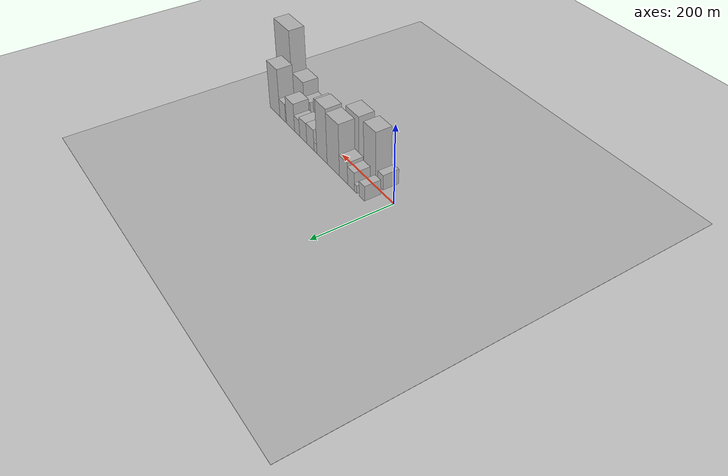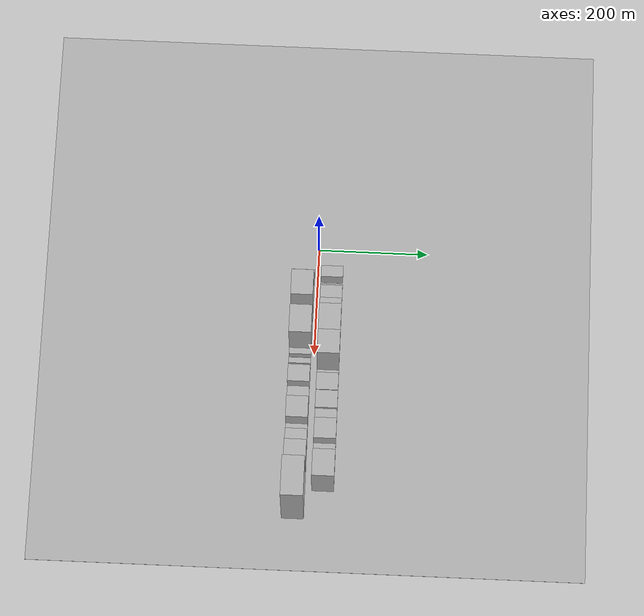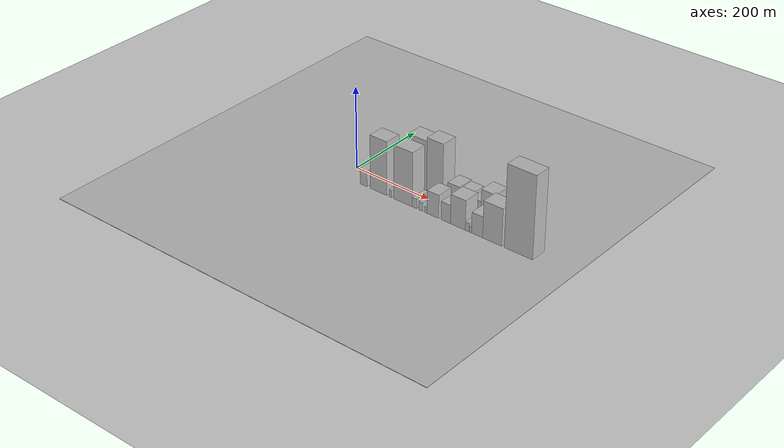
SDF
<?xml version="1.0" encoding="utf-8"?>

<sdf version="1.6">

   <world name="default">

      <gui fullscreen="0">

         <camera name="user_camera">

            <pose>-15 0 4.57585 0 0 0</pose>

            <view_controller>orbit</view_controller>

         </camera>

      </gui>

      <scene>

         <sky>

           <clouds>

             <speed>12</speed>

           </clouds>

         </sky>

         <ambient>0.4 0.4 0.4 1</ambient>

         <background>0.7 0.7 0.7 1</background>

         <shadows>1</shadows>

      </scene>

      <gravity>0 0 -9.8066</gravity>

      <magnetic_field>6e-06 2.3e-05 -4.2e-05</magnetic_field>

      <physics default="0" name="default_physics" type="ode">

         <ode>

            <solver>

               <type>quick</type>

               <iters>10</iters>

               <sor>1.0</sor>

               <use_dynamic_moi_rescaling>0</use_dynamic_moi_rescaling>

            </solver>

            <constraints>

               <cfm>0</cfm>

               <erp>0.2</erp>

               <contact_max_correcting_vel>100</contact_max_correcting_vel>

               <contact_surface_layer>0.001</contact_surface_layer>

            </constraints>

         </ode>

         <max_step_size>0.004</max_step_size>

         <real_time_factor>1</real_time_factor>

         <real_time_update_rate>250</real_time_update_rate>

      </physics>

      <light name="sun" type="directional">

         <cast_shadows>1</cast_shadows>

         <pose>0 0 10 0 0 0</pose>

         <diffuse>0.8 0.8 0.8 1</diffuse>

         <specular>0.2 0.2 0.2 1</specular>

         <attenuation>

            <range>1000</range>

            <constant>0.9</constant>

            <linear>0.01</linear>

            <quadratic>0.001</quadratic>

         </attenuation>

         <direction>-0.5 0.1 -0.9</direction>

      </light>

      <include>

         <name>ground_plane_1</name>

         <uri>model://HANNAS_ground_plane</uri>

         <pose>0 0 0  0 0 0</pose>

      </include>

      <include>

         <name>ground_plane_2</name>

         <uri>model://HANNAS_ground_plane</uri>

         <pose>100 0 0  0 0 0</pose>

      </include>

      <model name="building_1">

         <static>1</static>

         <pose frame="">50.5340 26.0000 0 0.000000 0.000000 1.570796</pose>

         <link name="link">

            <pose frame="">0 0 19.50 0 0 0</pose>

            <collision name="collision">

               <geometry>

                  <box>

                     <size>40.0000 21.0679 39.0000</size>

                  </box>

               </geometry>

               <max_contacts>10</max_contacts>

               <surface>

                  <contact>

                     <ode/>

                  </contact>

                  <bounce/>

                  <friction>

                     <torsional>

                        <ode/>

                     </torsional>

                     <ode/>

                  </friction>

               </surface>

            </collision>

            <visual name="visual">

               <cast_shadows>0</cast_shadows>

               <geometry>

                  <box>

                     <size>40.0000 21.0679 39.0000</size>

                  </box>

               </geometry>

               <material>

                  <script>

                     <uri>model://HANNAS_wall/materials/scripts</uri>

                     <uri>model://HANNAS_wall/materials/textures</uri>

                     <name>vrc/HANNAS_wall</name>

                  </script>

               </material>

            </visual>

            <self_collide>0</self_collide>

            <enable_wind>0</enable_wind>

            <kinematic>0</kinematic>

         </link>

      </model>

      <model name="building_2">

         <static>1</static>

         <pose frame="">74.2713 26.0000 0 0.000000 0.000000 1.570796</pose>

         <link name="link">

            <pose frame="">0 0 10.50 0 0 0</pose>

            <collision name="collision">

               <geometry>

                  <box>

                     <size>40.0000 10.4068 21.0000</size>

                  </box>

               </geometry>

               <max_contacts>10</max_contacts>

               <surface>

                  <contact>

                     <ode/>

                  </contact>

                  <bounce/>

                  <friction>

                     <torsional>

                        <ode/>

                     </torsional>

                     <ode/>

                  </friction>

               </surface>

            </collision>

            <visual name="visual">

               <cast_shadows>0</cast_shadows>

               <geometry>

                  <box>

                     <size>40.0000 10.4068 21.0000</size>

                  </box>

               </geometry>

               <material>

                  <script>

                     <uri>model://HANNAS_wall/materials/scripts</uri>

                     <uri>model://HANNAS_wall/materials/textures</uri>

                     <name>vrc/HANNAS_wall</name>

                  </script>

               </material>

            </visual>

            <self_collide>0</self_collide>

            <enable_wind>0</enable_wind>

            <kinematic>0</kinematic>

         </link>

      </model>

      <model name="building_3">

         <static>1</static>

         <pose frame="">92.6704 26.0000 0 0.000000 0.000000 1.570796</pose>

         <link name="link">

            <pose frame="">0 0 24.00 0 0 0</pose>

            <collision name="collision">

               <geometry>

                  <box>

                     <size>40.0000 26.3914 48.0000</size>

                  </box>

               </geometry>

               <max_contacts>10</max_contacts>

               <surface>

                  <contact>

                     <ode/>

                  </contact>

                  <bounce/>

                  <friction>

                     <torsional>

                        <ode/>

                     </torsional>

                     <ode/>

                  </friction>

               </surface>

            </collision>

            <visual name="visual">

               <cast_shadows>0</cast_shadows>

               <geometry>

                  <box>

                     <size>40.0000 26.3914 48.0000</size>

                  </box>

               </geometry>

               <material>

                  <script>

                     <uri>model://HANNAS_wall/materials/scripts</uri>

                     <uri>model://HANNAS_wall/materials/textures</uri>

                     <name>vrc/HANNAS_wall</name>

                  </script>

               </material>

            </visual>

            <self_collide>0</self_collide>

            <enable_wind>0</enable_wind>

            <kinematic>0</kinematic>

         </link>

      </model>

      <model name="building_4">

         <static>1</static>

         <pose frame="">122.5454 26.0000 0 0.000000 0.000000 1.570796</pose>

         <link name="link">

            <pose frame="">0 0 28.50 0 0 0</pose>

            <collision name="collision">

               <geometry>

                  <box>

                     <size>40.0000 33.3586 57.0000</size>

                  </box>

               </geometry>

               <max_contacts>10</max_contacts>

               <surface>

                  <contact>

                     <ode/>

                  </contact>

                  <bounce/>

                  <friction>

                     <torsional>

                        <ode/>

                     </torsional>

                     <ode/>

                  </friction>

               </surface>

            </collision>

            <visual name="visual">

               <cast_shadows>0</cast_shadows>

               <geometry>

                  <box>

                     <size>40.0000 33.3586 57.0000</size>

                  </box>

               </geometry>

               <material>

                  <script>

                     <uri>model://HANNAS_wall/materials/scripts</uri>

                     <uri>model://HANNAS_wall/materials/textures</uri>

                     <name>vrc/HANNAS_wall</name>

                  </script>

               </material>

            </visual>

            <self_collide>0</self_collide>

            <enable_wind>0</enable_wind>

            <kinematic>0</kinematic>

         </link>

      </model>

      <model name="building_5">

         <static>1</static>

         <pose frame="">164.6290 26.0000 0 0.000000 0.000000 1.570796</pose>

         <link name="link">

            <pose frame="">0 0 67.50 0 0 0</pose>

            <collision name="collision">

               <geometry>

                  <box>

                     <size>40.0000 50.8088 135.0000</size>

                  </box>

               </geometry>

               <max_contacts>10</max_contacts>

               <surface>

                  <contact>

                     <ode/>

                  </contact>

                  <bounce/>

                  <friction>

                     <torsional>

                        <ode/>

                     </torsional>

                     <ode/>

                  </friction>

               </surface>

            </collision>

            <visual name="visual">

               <cast_shadows>0</cast_shadows>

               <geometry>

                  <box>

                     <size>40.0000 50.8088 135.0000</size>

                  </box>

               </geometry>

               <material>

                  <script>

                     <uri>model://HANNAS_wall/materials/scripts</uri>

                     <uri>model://HANNAS_wall/materials/textures</uri>

                     <name>vrc/HANNAS_wall</name>

                  </script>

               </material>

            </visual>

            <self_collide>0</self_collide>

            <enable_wind>0</enable_wind>

            <kinematic>0</kinematic>

         </link>

      </model>

      <model name="building_6">

         <static>1</static>

         <pose frame="">211.9313 26.0000 0 0.000000 0.000000 1.570796</pose>

         <link name="link">

            <pose frame="">0 0 72.00 0 0 0</pose>

            <collision name="collision">

               <geometry>

                  <box>

                     <size>40.0000 43.7958 144.0000</size>

                  </box>

               </geometry>

               <max_contacts>10</max_contacts>

               <surface>

                  <contact>

                     <ode/>

                  </contact>

                  <bounce/>

                  <friction>

                     <torsional>

                        <ode/>

                     </torsional>

                     <ode/>

                  </friction>

               </surface>

            </collision>

            <visual name="visual">

               <cast_shadows>0</cast_shadows>

               <geometry>

                  <box>

                     <size>40.0000 43.7958 144.0000</size>

                  </box>

               </geometry>

               <material>

                  <script>

                     <uri>model://HANNAS_wall/materials/scripts</uri>

                     <uri>model://HANNAS_wall/materials/textures</uri>

                     <name>vrc/HANNAS_wall</name>

                  </script>

               </material>

            </visual>

            <self_collide>0</self_collide>

            <enable_wind>0</enable_wind>

            <kinematic>0</kinematic>

         </link>

      </model>

      <model name="building_7">

         <static>1</static>

         <pose frame="">240.2215 26.0000 0 0.000000 0.000000 1.570796</pose>

         <link name="link">

            <pose frame="">0 0 13.50 0 0 0</pose>

            <collision name="collision">

               <geometry>

                  <box>

                     <size>40.0000 12.7845 27.0000</size>

                  </box>

               </geometry>

               <max_contacts>10</max_contacts>

               <surface>

                  <contact>

                     <ode/>

                  </contact>

                  <bounce/>

                  <friction>

                     <torsional>

                        <ode/>

                     </torsional>

                     <ode/>

                  </friction>

               </surface>

            </collision>

            <visual name="visual">

               <cast_shadows>0</cast_shadows>

               <geometry>

                  <box>

                     <size>40.0000 12.7845 27.0000</size>

                  </box>

               </geometry>

               <material>

                  <script>

                     <uri>model://HANNAS_wall/materials/scripts</uri>

                     <uri>model://HANNAS_wall/materials/textures</uri>

                     <name>vrc/HANNAS_wall</name>

                  </script>

               </material>

            </visual>

            <self_collide>0</self_collide>

            <enable_wind>0</enable_wind>

            <kinematic>0</kinematic>

         </link>

      </model>

      <model name="building_8">

         <static>1</static>

         <pose frame="">262.5495 26.0000 0 0.000000 0.000000 1.570796</pose>

         <link name="link">

            <pose frame="">0 0 28.50 0 0 0</pose>

            <collision name="collision">

               <geometry>

                  <box>

                     <size>40.0000 31.8716 57.0000</size>

                  </box>

               </geometry>

               <max_contacts>10</max_contacts>

               <surface>

                  <contact>

                     <ode/>

                  </contact>

                  <bounce/>

                  <friction>

                     <torsional>

                        <ode/>

                     </torsional>

                     <ode/>

                  </friction>

               </surface>

            </collision>

            <visual name="visual">

               <cast_shadows>0</cast_shadows>

               <geometry>

                  <box>

                     <size>40.0000 31.8716 57.0000</size>

                  </box>

               </geometry>

               <material>

                  <script>

                     <uri>model://HANNAS_wall/materials/scripts</uri>

                     <uri>model://HANNAS_wall/materials/textures</uri>

                     <name>vrc/HANNAS_wall</name>

                  </script>

               </material>

            </visual>

            <self_collide>0</self_collide>

            <enable_wind>0</enable_wind>

            <kinematic>0</kinematic>

         </link>

      </model>

      <model name="building_9">

         <static>1</static>

         <pose frame="">294.6824 26.0000 0 0.000000 0.000000 1.570796</pose>

         <link name="link">

            <pose frame="">0 0 27.00 0 0 0</pose>

            <collision name="collision">

               <geometry>

                  <box>

                     <size>40.0000 32.3941 54.0000</size>

                  </box>

               </geometry>

               <max_contacts>10</max_contacts>

               <surface>

                  <contact>

                     <ode/>

                  </contact>

                  <bounce/>

                  <friction>

                     <torsional>

                        <ode/>

                     </torsional>

                     <ode/>

                  </friction>

               </surface>

            </collision>

            <visual name="visual">

               <cast_shadows>0</cast_shadows>

               <geometry>

                  <box>

                     <size>40.0000 32.3941 54.0000</size>

                  </box>

               </geometry>

               <material>

                  <script>

                     <uri>model://HANNAS_wall/materials/scripts</uri>

                     <uri>model://HANNAS_wall/materials/textures</uri>

                     <name>vrc/HANNAS_wall</name>

                  </script>

               </material>

            </visual>

            <self_collide>0</self_collide>

            <enable_wind>0</enable_wind>

            <kinematic>0</kinematic>

         </link>

      </model>

      <model name="building_10">

         <static>1</static>

         <pose frame="">322.7314 26.0000 0 0.000000 0.000000 1.570796</pose>

         <link name="link">

            <pose frame="">0 0 22.50 0 0 0</pose>

            <collision name="collision">

               <geometry>

                  <box>

                     <size>40.0000 23.7038 45.0000</size>

                  </box>

               </geometry>

               <max_contacts>10</max_contacts>

               <surface>

                  <contact>

                     <ode/>

                  </contact>

                  <bounce/>

                  <friction>

                     <torsional>

                        <ode/>

                     </torsional>

                     <ode/>

                  </friction>

               </surface>

            </collision>

            <visual name="visual">

               <cast_shadows>0</cast_shadows>

               <geometry>

                  <box>

                     <size>40.0000 23.7038 45.0000</size>

                  </box>

               </geometry>

               <material>

                  <script>

                     <uri>model://HANNAS_wall/materials/scripts</uri>

                     <uri>model://HANNAS_wall/materials/textures</uri>

                     <name>vrc/HANNAS_wall</name>

                  </script>

               </material>

            </visual>

            <self_collide>0</self_collide>

            <enable_wind>0</enable_wind>

            <kinematic>0</kinematic>

         </link>

      </model>

      <model name="building_11">

         <static>1</static>

         <pose frame="">353.4456 26.0000 0 0.000000 0.000000 1.570796</pose>

         <link name="link">

            <pose frame="">0 0 37.50 0 0 0</pose>

            <collision name="collision">

               <geometry>

                  <box>

                     <size>40.0000 37.7248 75.0000</size>

                  </box>

               </geometry>

               <max_contacts>10</max_contacts>

               <surface>

                  <contact>

                     <ode/>

                  </contact>

                  <bounce/>

                  <friction>

                     <torsional>

                        <ode/>

                     </torsional>

                     <ode/>

                  </friction>

               </surface>

            </collision>

            <visual name="visual">

               <cast_shadows>0</cast_shadows>

               <geometry>

                  <box>

                     <size>40.0000 37.7248 75.0000</size>

                  </box>

               </geometry>

               <material>

                  <script>

                     <uri>model://HANNAS_wall/materials/scripts</uri>

                     <uri>model://HANNAS_wall/materials/textures</uri>

                     <name>vrc/HANNAS_wall</name>

                  </script>

               </material>

            </visual>

            <self_collide>0</self_collide>

            <enable_wind>0</enable_wind>

            <kinematic>0</kinematic>

         </link>

      </model>

      <model name="building_12">

         <static>1</static>

         <pose frame="">390.3895 26.0000 0 0.000000 0.000000 1.570796</pose>

         <link name="link">

            <pose frame="">0 0 25.50 0 0 0</pose>

            <collision name="collision">

               <geometry>

                  <box>

                     <size>40.0000 28.1629 51.0000</size>

                  </box>

               </geometry>

               <max_contacts>10</max_contacts>

               <surface>

                  <contact>

                     <ode/>

                  </contact>

                  <bounce/>

                  <friction>

                     <torsional>

                        <ode/>

                     </torsional>

                     <ode/>

                  </friction>

               </surface>

            </collision>

            <visual name="visual">

               <cast_shadows>0</cast_shadows>

               <geometry>

                  <box>

                     <size>40.0000 28.1629 51.0000</size>

                  </box>

               </geometry>

               <material>

                  <script>

                     <uri>model://HANNAS_wall/materials/scripts</uri>

                     <uri>model://HANNAS_wall/materials/textures</uri>

                     <name>vrc/HANNAS_wall</name>

                  </script>

               </material>

            </visual>

            <self_collide>0</self_collide>

            <enable_wind>0</enable_wind>

            <kinematic>0</kinematic>

         </link>

      </model>

      <model name="building_13">

         <static>1</static>

         <pose frame="">428.7352 26.0000 0 0.000000 0.000000 1.570796</pose>

         <link name="link">

            <pose frame="">0 0 64.50 0 0 0</pose>

            <collision name="collision">

               <geometry>

                  <box>

                     <size>40.0000 48.5285 129.0000</size>

                  </box>

               </geometry>

               <max_contacts>10</max_contacts>

               <surface>

                  <contact>

                     <ode/>

                  </contact>

                  <bounce/>

                  <friction>

                     <torsional>

                        <ode/>

                     </torsional>

                     <ode/>

                  </friction>

               </surface>

            </collision>

            <visual name="visual">

               <cast_shadows>0</cast_shadows>

               <geometry>

                  <box>

                     <size>40.0000 48.5285 129.0000</size>

                  </box>

               </geometry>

               <material>

                  <script>

                     <uri>model://HANNAS_wall/materials/scripts</uri>

                     <uri>model://HANNAS_wall/materials/textures</uri>

                     <name>vrc/HANNAS_wall</name>

                  </script>

               </material>

            </visual>

            <self_collide>0</self_collide>

            <enable_wind>0</enable_wind>

            <kinematic>0</kinematic>

         </link>

      </model>

      <model name="building_14">

         <static>1</static>

         <pose frame="">58.7984 -26.0000 0 0.000000 0.000000 1.570796</pose>

         <link name="link">

            <pose frame="">0 0 19.50 0 0 0</pose>

            <collision name="collision">

               <geometry>

                  <box>

                     <size>40.0000 19.5967 39.0000</size>

                  </box>

               </geometry>

               <max_contacts>10</max_contacts>

               <surface>

                  <contact>

                     <ode/>

                  </contact>

                  <bounce/>

                  <friction>

                     <torsional>

                        <ode/>

                     </torsional>

                     <ode/>

                  </friction>

               </surface>

            </collision>

            <visual name="visual">

               <cast_shadows>0</cast_shadows>

               <geometry>

                  <box>

                     <size>40.0000 19.5967 39.0000</size>

                  </box>

               </geometry>

               <material>

                  <script>

                     <uri>model://HANNAS_wall/materials/scripts</uri>

                     <uri>model://HANNAS_wall/materials/textures</uri>

                     <name>vrc/HANNAS_wall</name>

                  </script>

               </material>

            </visual>

            <self_collide>0</self_collide>

            <enable_wind>0</enable_wind>

            <kinematic>0</kinematic>

         </link>

      </model>

      <model name="building_15">

         <static>1</static>

         <pose frame="">100.8456 -26.0000 0 0.000000 0.000000 1.570796</pose>

         <link name="link">

            <pose frame="">0 0 66.00 0 0 0</pose>

            <collision name="collision">

               <geometry>

                  <box>

                     <size>40.0000 46.4978 132.0000</size>

                  </box>

               </geometry>

               <max_contacts>10</max_contacts>

               <surface>

                  <contact>

                     <ode/>

                  </contact>

                  <bounce/>

                  <friction>

                     <torsional>

                        <ode/>

                     </torsional>

                     <ode/>

                  </friction>

               </surface>

            </collision>

            <visual name="visual">

               <cast_shadows>0</cast_shadows>

               <geometry>

                  <box>

                     <size>40.0000 46.4978 132.0000</size>

                  </box>

               </geometry>

               <material>

                  <script>

                     <uri>model://HANNAS_wall/materials/scripts</uri>

                     <uri>model://HANNAS_wall/materials/textures</uri>

                     <name>vrc/HANNAS_wall</name>

                  </script>

               </material>

            </visual>

            <self_collide>0</self_collide>

            <enable_wind>0</enable_wind>

            <kinematic>0</kinematic>

         </link>

      </model>

      <model name="building_16">

         <static>1</static>

         <pose frame="">133.9995 -26.0000 0 0.000000 0.000000 1.570796</pose>

         <link name="link">

            <pose frame="">0 0 9.00 0 0 0</pose>

            <collision name="collision">

               <geometry>

                  <box>

                     <size>40.0000 7.8099 18.0000</size>

                  </box>

               </geometry>

               <max_contacts>10</max_contacts>

               <surface>

                  <contact>

                     <ode/>

                  </contact>

                  <bounce/>

                  <friction>

                     <torsional>

                        <ode/>

                     </torsional>

                     <ode/>

                  </friction>

               </surface>

            </collision>

            <visual name="visual">

               <cast_shadows>0</cast_shadows>

               <geometry>

                  <box>

                     <size>40.0000 7.8099 18.0000</size>

                  </box>

               </geometry>

               <material>

                  <script>

                     <uri>model://HANNAS_wall/materials/scripts</uri>

                     <uri>model://HANNAS_wall/materials/textures</uri>

                     <name>vrc/HANNAS_wall</name>

                  </script>

               </material>

            </visual>

            <self_collide>0</self_collide>

            <enable_wind>0</enable_wind>

            <kinematic>0</kinematic>

         </link>

      </model>

      <model name="building_17">

         <static>1</static>

         <pose frame="">168.4821 -26.0000 0 0.000000 0.000000 1.570796</pose>

         <link name="link">

            <pose frame="">0 0 66.00 0 0 0</pose>

            <collision name="collision">

               <geometry>

                  <box>

                     <size>40.0000 51.1553 132.0000</size>

                  </box>

               </geometry>

               <max_contacts>10</max_contacts>

               <surface>

                  <contact>

                     <ode/>

                  </contact>

                  <bounce/>

                  <friction>

                     <torsional>

                        <ode/>

                     </torsional>

                     <ode/>

                  </friction>

               </surface>

            </collision>

            <visual name="visual">

               <cast_shadows>0</cast_shadows>

               <geometry>

                  <box>

                     <size>40.0000 51.1553 132.0000</size>

                  </box>

               </geometry>

               <material>

                  <script>

                     <uri>model://HANNAS_wall/materials/scripts</uri>

                     <uri>model://HANNAS_wall/materials/textures</uri>

                     <name>vrc/HANNAS_wall</name>

                  </script>

               </material>

            </visual>

            <self_collide>0</self_collide>

            <enable_wind>0</enable_wind>

            <kinematic>0</kinematic>

         </link>

      </model>

      <model name="building_18">

         <static>1</static>

         <pose frame="">199.6412 -26.0000 0 0.000000 0.000000 1.570796</pose>

         <link name="link">

            <pose frame="">0 0 12.00 0 0 0</pose>

            <collision name="collision">

               <geometry>

                  <box>

                     <size>40.0000 11.1629 24.0000</size>

                  </box>

               </geometry>

               <max_contacts>10</max_contacts>

               <surface>

                  <contact>

                     <ode/>

                  </contact>

                  <bounce/>

                  <friction>

                     <torsional>

                        <ode/>

                     </torsional>

                     <ode/>

                  </friction>

               </surface>

            </collision>

            <visual name="visual">

               <cast_shadows>0</cast_shadows>

               <geometry>

                  <box>

                     <size>40.0000 11.1629 24.0000</size>

                  </box>

               </geometry>

               <material>

                  <script>

                     <uri>model://HANNAS_wall/materials/scripts</uri>

                     <uri>model://HANNAS_wall/materials/textures</uri>

                     <name>vrc/HANNAS_wall</name>

                  </script>

               </material>

            </visual>

            <self_collide>0</self_collide>

            <enable_wind>0</enable_wind>

            <kinematic>0</kinematic>

         </link>

      </model>

      <model name="building_19">

         <static>1</static>

         <pose frame="">216.4419 -26.0000 0 0.000000 0.000000 1.570796</pose>

         <link name="link">

            <pose frame="">0 0 10.50 0 0 0</pose>

            <collision name="collision">

               <geometry>

                  <box>

                     <size>40.0000 10.4383 21.0000</size>

                  </box>

               </geometry>

               <max_contacts>10</max_contacts>

               <surface>

                  <contact>

                     <ode/>

                  </contact>

                  <bounce/>

                  <friction>

                     <torsional>

                        <ode/>

                     </torsional>

                     <ode/>

                  </friction>

               </surface>

            </collision>

            <visual name="visual">

               <cast_shadows>0</cast_shadows>

               <geometry>

                  <box>

                     <size>40.0000 10.4383 21.0000</size>

                  </box>

               </geometry>

               <material>

                  <script>

                     <uri>model://HANNAS_wall/materials/scripts</uri>

                     <uri>model://HANNAS_wall/materials/textures</uri>

                     <name>vrc/HANNAS_wall</name>

                  </script>

               </material>

            </visual>

            <self_collide>0</self_collide>

            <enable_wind>0</enable_wind>

            <kinematic>0</kinematic>

         </link>

      </model>

      <model name="building_20">

         <static>1</static>

         <pose frame="">230.6820 -26.0000 0 0.000000 0.000000 1.570796</pose>

         <link name="link">

            <pose frame="">0 0 7.50 0 0 0</pose>

            <collision name="collision">

               <geometry>

                  <box>

                     <size>40.0000 6.0420 15.0000</size>

                  </box>

               </geometry>

               <max_contacts>10</max_contacts>

               <surface>

                  <contact>

                     <ode/>

                  </contact>

                  <bounce/>

                  <friction>

                     <torsional>

                        <ode/>

                     </torsional>

                     <ode/>

                  </friction>

               </surface>

            </collision>

            <visual name="visual">

               <cast_shadows>0</cast_shadows>

               <geometry>

                  <box>

                     <size>40.0000 6.0420 15.0000</size>

                  </box>

               </geometry>

               <material>

                  <script>

                     <uri>model://HANNAS_wall/materials/scripts</uri>

                     <uri>model://HANNAS_wall/materials/textures</uri>

                     <name>vrc/HANNAS_wall</name>

                  </script>

               </material>

            </visual>

            <self_collide>0</self_collide>

            <enable_wind>0</enable_wind>

            <kinematic>0</kinematic>

         </link>

      </model>

      <model name="building_21">

         <static>1</static>

         <pose frame="">249.2956 -26.0000 0 0.000000 0.000000 1.570796</pose>

         <link name="link">

            <pose frame="">0 0 28.50 0 0 0</pose>

            <collision name="collision">

               <geometry>

                  <box>

                     <size>40.0000 31.1852 57.0000</size>

                  </box>

               </geometry>

               <max_contacts>10</max_contacts>

               <surface>

                  <contact>

                     <ode/>

                  </contact>

                  <bounce/>

                  <friction>

                     <torsional>

                        <ode/>

                     </torsional>

                     <ode/>

                  </friction>

               </surface>

            </collision>

            <visual name="visual">

               <cast_shadows>0</cast_shadows>

               <geometry>

                  <box>

                     <size>40.0000 31.1852 57.0000</size>

                  </box>

               </geometry>

               <material>

                  <script>

                     <uri>model://HANNAS_wall/materials/scripts</uri>

                     <uri>model://HANNAS_wall/materials/textures</uri>

                     <name>vrc/HANNAS_wall</name>

                  </script>

               </material>

            </visual>

            <self_collide>0</self_collide>

            <enable_wind>0</enable_wind>

            <kinematic>0</kinematic>

         </link>

      </model>

      <model name="building_22">

         <static>1</static>

         <pose frame="">283.3195 -26.0000 0 0.000000 0.000000 1.570796</pose>

         <link name="link">

            <pose frame="">0 0 22.50 0 0 0</pose>

            <collision name="collision">

               <geometry>

                  <box>

                     <size>40.0000 24.8626 45.0000</size>

                  </box>

               </geometry>

               <max_contacts>10</max_contacts>

               <surface>

                  <contact>

                     <ode/>

                  </contact>

                  <bounce/>

                  <friction>

                     <torsional>

                        <ode/>

                     </torsional>

                     <ode/>

                  </friction>

               </surface>

            </collision>

            <visual name="visual">

               <cast_shadows>0</cast_shadows>

               <geometry>

                  <box>

                     <size>40.0000 24.8626 45.0000</size>

                  </box>

               </geometry>

               <material>

                  <script>

                     <uri>model://HANNAS_wall/materials/scripts</uri>

                     <uri>model://HANNAS_wall/materials/textures</uri>

                     <name>vrc/HANNAS_wall</name>

                  </script>

               </material>

            </visual>

            <self_collide>0</self_collide>

            <enable_wind>0</enable_wind>

            <kinematic>0</kinematic>

         </link>

      </model>

      <model name="building_23">

         <static>1</static>

         <pose frame="">315.2714 -26.0000 0 0.000000 0.000000 1.570796</pose>

         <link name="link">

            <pose frame="">0 0 36.00 0 0 0</pose>

            <collision name="collision">

               <geometry>

                  <box>

                     <size>40.0000 39.0412 72.0000</size>

                  </box>

               </geometry>

               <max_contacts>10</max_contacts>

               <surface>

                  <contact>

                     <ode/>

                  </contact>

                  <bounce/>

                  <friction>

                     <torsional>

                        <ode/>

                     </torsional>

                     <ode/>

                  </friction>

               </surface>

            </collision>

            <visual name="visual">

               <cast_shadows>0</cast_shadows>

               <geometry>

                  <box>

                     <size>40.0000 39.0412 72.0000</size>

                  </box>

               </geometry>

               <material>

                  <script>

                     <uri>model://HANNAS_wall/materials/scripts</uri>

                     <uri>model://HANNAS_wall/materials/textures</uri>

                     <name>vrc/HANNAS_wall</name>

                  </script>

               </material>

            </visual>

            <self_collide>0</self_collide>

            <enable_wind>0</enable_wind>

            <kinematic>0</kinematic>

         </link>

      </model>

      <model name="building_24">

         <static>1</static>

         <pose frame="">339.5559 -26.0000 0 0.000000 0.000000 1.570796</pose>

         <link name="link">

            <pose frame="">0 0 10.50 0 0 0</pose>

            <collision name="collision">

               <geometry>

                  <box>

                     <size>40.0000 9.5278 21.0000</size>

                  </box>

               </geometry>

               <max_contacts>10</max_contacts>

               <surface>

                  <contact>

                     <ode/>

                  </contact>

                  <bounce/>

                  <friction>

                     <torsional>

                        <ode/>

                     </torsional>

                     <ode/>

                  </friction>

               </surface>

            </collision>

            <visual name="visual">

               <cast_shadows>0</cast_shadows>

               <geometry>

                  <box>

                     <size>40.0000 9.5278 21.0000</size>

                  </box>

               </geometry>

               <material>

                  <script>

                     <uri>model://HANNAS_wall/materials/scripts</uri>

                     <uri>model://HANNAS_wall/materials/textures</uri>

                     <name>vrc/HANNAS_wall</name>

                  </script>

               </material>

            </visual>

            <self_collide>0</self_collide>

            <enable_wind>0</enable_wind>

            <kinematic>0</kinematic>

         </link>

      </model>

      <model name="building_25">

         <static>1</static>

         <pose frame="">347.5009 -26.0000 0 0.000000 0.000000 1.570796</pose>

         <link name="link">

            <pose frame="">0 0 7.50 0 0 0</pose>

            <collision name="collision">

               <geometry>

                  <box>

                     <size>40.0000 6.3622 15.0000</size>

                  </box>

               </geometry>

               <max_contacts>10</max_contacts>

               <surface>

                  <contact>

                     <ode/>

                  </contact>

                  <bounce/>

                  <friction>

                     <torsional>

                        <ode/>

                     </torsional>

                     <ode/>

                  </friction>

               </surface>

            </collision>

            <visual name="visual">

               <cast_shadows>0</cast_shadows>

               <geometry>

                  <box>

                     <size>40.0000 6.3622 15.0000</size>

                  </box>

               </geometry>

               <material>

                  <script>

                     <uri>model://HANNAS_wall/materials/scripts</uri>

                     <uri>model://HANNAS_wall/materials/textures</uri>

                     <name>vrc/HANNAS_wall</name>

                  </script>

               </material>

            </visual>

            <self_collide>0</self_collide>

            <enable_wind>0</enable_wind>

            <kinematic>0</kinematic>

         </link>

      </model>

      <model name="building_26">

         <static>1</static>

         <pose frame="">365.1162 -26.0000 0 0.000000 0.000000 1.570796</pose>

         <link name="link">

            <pose frame="">0 0 25.50 0 0 0</pose>

            <collision name="collision">

               <geometry>

                  <box>

                     <size>40.0000 28.8684 51.0000</size>

                  </box>

               </geometry>

               <max_contacts>10</max_contacts>

               <surface>

                  <contact>

                     <ode/>

                  </contact>

                  <bounce/>

                  <friction>

                     <torsional>

                        <ode/>

                     </torsional>

                     <ode/>

                  </friction>

               </surface>

            </collision>

            <visual name="visual">

               <cast_shadows>0</cast_shadows>

               <geometry>

                  <box>

                     <size>40.0000 28.8684 51.0000</size>

                  </box>

               </geometry>

               <material>

                  <script>

                     <uri>model://HANNAS_wall/materials/scripts</uri>

                     <uri>model://HANNAS_wall/materials/textures</uri>

                     <name>vrc/HANNAS_wall</name>

                  </script>

               </material>

            </visual>

            <self_collide>0</self_collide>

            <enable_wind>0</enable_wind>

            <kinematic>0</kinematic>

         </link>

      </model>

      <model name="building_27">

         <static>1</static>

         <pose frame="">403.8513 -26.0000 0 0.000000 0.000000 1.570796</pose>

         <link name="link">

            <pose frame="">0 0 45.00 0 0 0</pose>

            <collision name="collision">

               <geometry>

                  <box>

                     <size>40.0000 48.6019 90.0000</size>

                  </box>

               </geometry>

               <max_contacts>10</max_contacts>

               <surface>

                  <contact>

                     <ode/>

                  </contact>

                  <bounce/>

                  <friction>

                     <torsional>

                        <ode/>

                     </torsional>

                     <ode/>

                  </friction>

               </surface>

            </collision>

            <visual name="visual">

               <cast_shadows>0</cast_shadows>

               <geometry>

                  <box>

                     <size>40.0000 48.6019 90.0000</size>

                  </box>

               </geometry>

               <material>

                  <script>

                     <uri>model://HANNAS_wall/materials/scripts</uri>

                     <uri>model://HANNAS_wall/materials/textures</uri>

                     <name>vrc/HANNAS_wall</name>

                  </script>

               </material>

            </visual>

            <self_collide>0</self_collide>

            <enable_wind>0</enable_wind>

            <kinematic>0</kinematic>

         </link>

      </model>

      <model name="building_28">

         <static>1</static>

         <pose frame="">469.7414 -26.0000 0 0.000000 0.000000 1.570796</pose>

         <link name="link">

            <pose frame="">0 0 99.00 0 0 0</pose>

            <collision name="collision">

               <geometry>

                  <box>

                     <size>40.0000 71.1783 198.0000</size>

                  </box>

               </geometry>

               <max_contacts>10</max_contacts>

               <surface>

                  <contact>

                     <ode/>

                  </contact>

                  <bounce/>

                  <friction>

                     <torsional>

                        <ode/>

                     </torsional>

                     <ode/>

                  </friction>

               </surface>

            </collision>

            <visual name="visual">

               <cast_shadows>0</cast_shadows>

               <geometry>

                  <box>

                     <size>40.0000 71.1783 198.0000</size>

                  </box>

               </geometry>

               <material>

                  <script>

                     <uri>model://HANNAS_wall/materials/scripts</uri>

                     <uri>model://HANNAS_wall/materials/textures</uri>

                     <name>vrc/HANNAS_wall</name>

                  </script>

               </material>

            </visual>

            <self_collide>0</self_collide>

            <enable_wind>0</enable_wind>

            <kinematic>0</kinematic>

         </link>

      </model>

   </world>

</sdf>

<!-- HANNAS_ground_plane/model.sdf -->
<sdf version="1.4">
<model name="HANNAS_ground_plane">
  <static>true</static>
    <link name="link">
      <collision name="collision">
        <geometry>
          <plane>
            <normal>0 0 1</normal>
            <size>1000 1000</size>
          </plane>
        </geometry>
        <surface>
          <friction>
            <ode>
              <mu>100</mu>
              <mu2>50</mu2>
            </ode>
          </friction>
        </surface>
      </collision>
      <visual name="visual">
        <cast_shadows>false</cast_shadows>
        <geometry>
          <plane>
            <normal>0 0 1</normal>
            <size>1000 1000</size>
          </plane>
        </geometry>
        <material>
          <script>
            <uri>model://HANNAS_ground_plane/materials/scripts/HANNAS_ground_plane.material</uri>
	    <uri>model://HANNAS_ground_plane/materials/textures</uri>
            <name>HANNASGroundPlane/Image</name>
          </script>
        </material>
      </visual>
    </link>
  </model>
</sdf>
